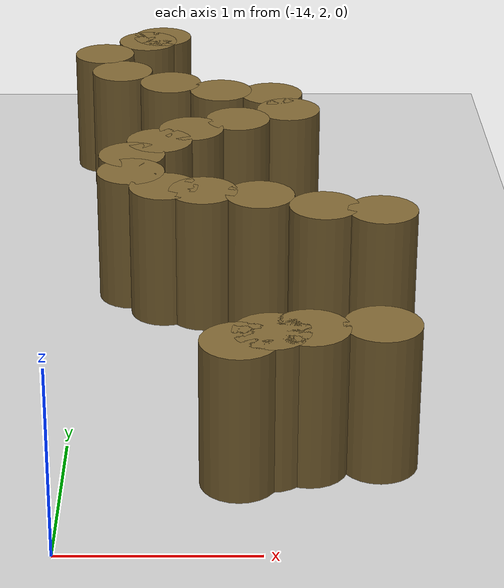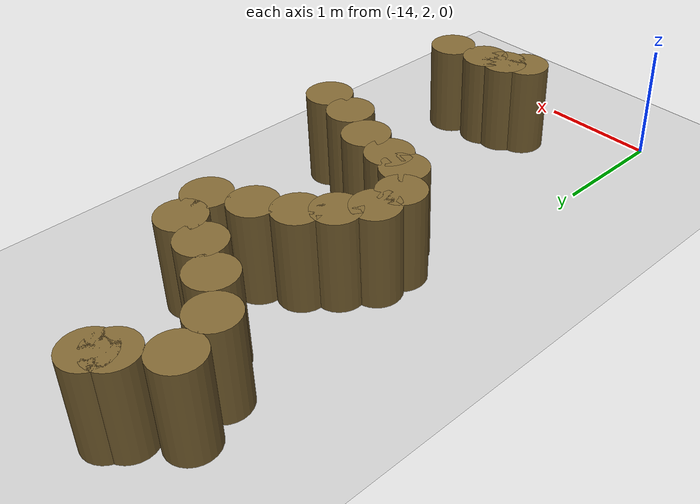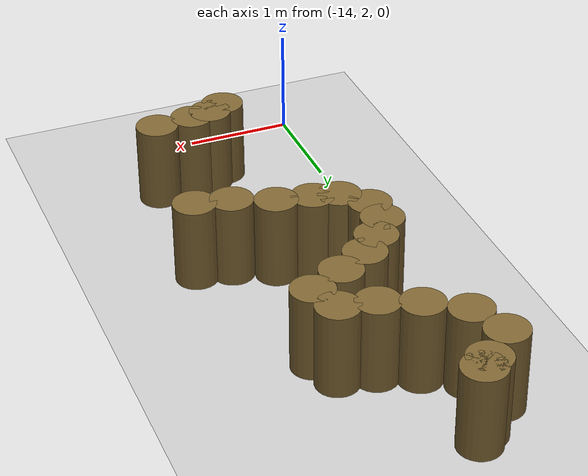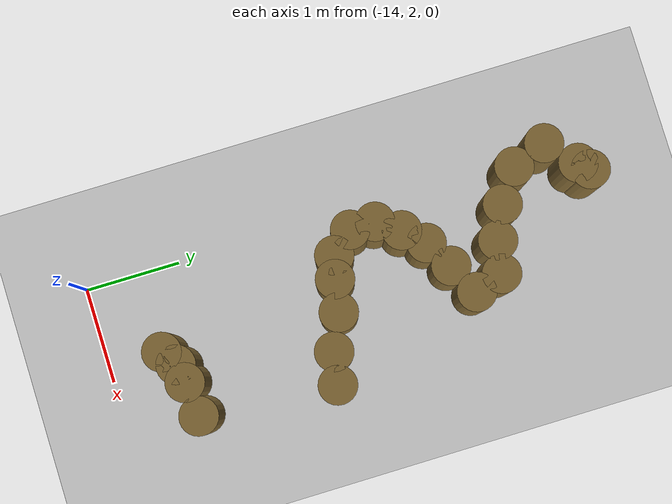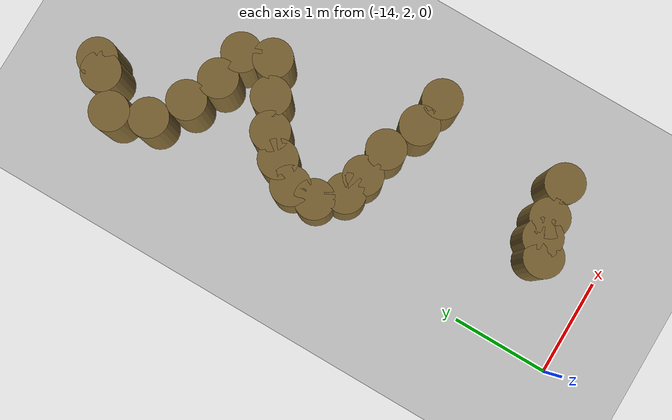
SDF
<sdf version="1.6">
 <world name="default">
  <model name="ground_plane">
   <static>1</static>
   <link name="link">
    <collision name="collision">
     <geometry><plane><normal>0 0 1</normal><size>100 100</size></plane></geometry>
     <surface><friction><ode><mu>100</mu><mu2>50</mu2></ode></friction></surface>
    </collision>
    <visual name="visual">
     <cast_shadows>0</cast_shadows>
     <geometry><plane><normal>0 0 1</normal><size>100 100</size></plane></geometry>
     <material>
      <script><uri>file://media/materials/scripts/gazebo.material</uri><name>Gazebo/Grey</name></script>
     </material>
    </visual>
   </link>
  </model>
  <model name="mini_cylinder_0_clone_0_clone_clone_clone_clone_3_clone_20_clone_21">
   <link name="link">
    <inertial>
     <mass>1</mass>
     <inertia><ixx>0.145833</ixx><ixy>0</ixy><ixz>0</ixz><iyy>0.145833</iyy><iyz>0</iyz><izz>0.125</izz></inertia>
    </inertial>
    <visual name="visual">
     <geometry><cylinder><radius>0.2</radius><length>0.8</length></cylinder></geometry>
     <material>
      <script><name>Gazebo/Grey</name><uri>file://media/materials/scripts/gazebo.material</uri></script>
      <shader type="vertex"><normal_map>__default__</normal_map></shader>
      <ambient>0.5 0.4 0.2 1</ambient>
      <diffuse>0.7 0.7 0.7 1</diffuse>
      <specular>0.01 0.01 0.01 1</specular>
      <emissive>0 0 0 1</emissive>
     </material>
    </visual>
    <collision name="collision">
     <geometry><cylinder><radius>0.2</radius><length>0.8</length></cylinder></geometry>
     <surface>
      <friction>
       <ode><mu>1</mu><mu2>1</mu2><fdir1>0 0 0</fdir1><slip1>0</slip1><slip2>0</slip2></ode>
       <torsional>
        <coefficient>1</coefficient>
        <patch_radius>0</patch_radius>
        <surface_radius>0</surface_radius>
        <use_patch_radius>1</use_patch_radius>
        <ode><slip>0</slip></ode>
       </torsional>
      </friction>
      <bounce><restitution_coefficient>0</restitution_coefficient><threshold>1e+06</threshold></bounce>
      <contact>
       <collide_without_contact>0</collide_without_contact>
       <collide_without_contact_bitmask>1</collide_without_contact_bitmask>
       <collide_bitmask>1</collide_bitmask>
       <ode>
        <soft_cfm>0</soft_cfm>
        <soft_erp>0.2</soft_erp>
        <kp>1e+13</kp>
        <kd>1</kd>
        <max_vel>0.01</max_vel>
        <min_depth>0</min_depth>
       </ode>
       <bullet>
        <split_impulse>1</split_impulse>
        <split_impulse_penetration_threshold>-0.01</split_impulse_penetration_threshold>
        <soft_cfm>0</soft_cfm>
        <soft_erp>0.2</soft_erp>
        <kp>1e+13</kp>
        <kd>1</kd>
       </bullet>
      </contact>
     </surface>
    </collision>
   </link>
   <static>1</static>
   <pose>-12.4008 2.82689 0.4 0 -0 0</pose>
  </model>
  <model name="mini_cylinder_0_clone_0_clone_clone_clone_clone_3_clone_20_clone_22">
   <link name="link">
    <inertial>
     <mass>1</mass>
     <inertia><ixx>0.145833</ixx><ixy>0</ixy><ixz>0</ixz><iyy>0.145833</iyy><iyz>0</iyz><izz>0.125</izz></inertia>
    </inertial>
    <visual name="visual">
     <geometry><cylinder><radius>0.2</radius><length>0.8</length></cylinder></geometry>
     <material>
      <script><name>Gazebo/Grey</name><uri>file://media/materials/scripts/gazebo.material</uri></script>
      <shader type="vertex"><normal_map>__default__</normal_map></shader>
      <ambient>0.5 0.4 0.2 1</ambient>
      <diffuse>0.7 0.7 0.7 1</diffuse>
      <specular>0.01 0.01 0.01 1</specular>
      <emissive>0 0 0 1</emissive>
     </material>
    </visual>
    <collision name="collision">
     <geometry><cylinder><radius>0.2</radius><length>0.8</length></cylinder></geometry>
     <surface>
      <friction>
       <ode><mu>1</mu><mu2>1</mu2><fdir1>0 0 0</fdir1><slip1>0</slip1><slip2>0</slip2></ode>
       <torsional>
        <coefficient>1</coefficient>
        <patch_radius>0</patch_radius>
        <surface_radius>0</surface_radius>
        <use_patch_radius>1</use_patch_radius>
        <ode><slip>0</slip></ode>
       </torsional>
      </friction>
      <bounce><restitution_coefficient>0</restitution_coefficient><threshold>1e+06</threshold></bounce>
      <contact>
       <collide_without_contact>0</collide_without_contact>
       <collide_without_contact_bitmask>1</collide_without_contact_bitmask>
       <collide_bitmask>1</collide_bitmask>
       <ode>
        <soft_cfm>0</soft_cfm>
        <soft_erp>0.2</soft_erp>
        <kp>1e+13</kp>
        <kd>1</kd>
        <max_vel>0.01</max_vel>
        <min_depth>0</min_depth>
       </ode>
       <bullet>
        <split_impulse>1</split_impulse>
        <split_impulse_penetration_threshold>-0.01</split_impulse_penetration_threshold>
        <soft_cfm>0</soft_cfm>
        <soft_erp>0.2</soft_erp>
        <kp>1e+13</kp>
        <kd>1</kd>
       </bullet>
      </contact>
     </surface>
    </collision>
   </link>
   <static>1</static>
   <pose>-12.7576 2.7888 0.4 0 -0 0</pose>
  </model>
  <model name="mini_cylinder_0_clone_0_clone_clone_clone_clone_3_clone_20_clone_23">
   <link name="link">
    <inertial>
     <mass>1</mass>
     <inertia><ixx>0.145833</ixx><ixy>0</ixy><ixz>0</ixz><iyy>0.145833</iyy><iyz>0</iyz><izz>0.125</izz></inertia>
    </inertial>
    <visual name="visual">
     <geometry><cylinder><radius>0.2</radius><length>0.8</length></cylinder></geometry>
     <material>
      <script><name>Gazebo/Grey</name><uri>file://media/materials/scripts/gazebo.material</uri></script>
      <shader type="vertex"><normal_map>__default__</normal_map></shader>
      <ambient>0.5 0.4 0.2 1</ambient>
      <diffuse>0.7 0.7 0.7 1</diffuse>
      <specular>0.01 0.01 0.01 1</specular>
      <emissive>0 0 0 1</emissive>
     </material>
    </visual>
    <collision name="collision">
     <geometry><cylinder><radius>0.2</radius><length>0.8</length></cylinder></geometry>
     <surface>
      <friction>
       <ode><mu>1</mu><mu2>1</mu2><fdir1>0 0 0</fdir1><slip1>0</slip1><slip2>0</slip2></ode>
       <torsional>
        <coefficient>1</coefficient>
        <patch_radius>0</patch_radius>
        <surface_radius>0</surface_radius>
        <use_patch_radius>1</use_patch_radius>
        <ode><slip>0</slip></ode>
       </torsional>
      </friction>
      <bounce><restitution_coefficient>0</restitution_coefficient><threshold>1e+06</threshold></bounce>
      <contact>
       <collide_without_contact>0</collide_without_contact>
       <collide_without_contact_bitmask>1</collide_without_contact_bitmask>
       <collide_bitmask>1</collide_bitmask>
       <ode>
        <soft_cfm>0</soft_cfm>
        <soft_erp>0.2</soft_erp>
        <kp>1e+13</kp>
        <kd>1</kd>
        <max_vel>0.01</max_vel>
        <min_depth>0</min_depth>
       </ode>
       <bullet>
        <split_impulse>1</split_impulse>
        <split_impulse_penetration_threshold>-0.01</split_impulse_penetration_threshold>
        <soft_cfm>0</soft_cfm>
        <soft_erp>0.2</soft_erp>
        <kp>1e+13</kp>
        <kd>1</kd>
       </bullet>
      </contact>
     </surface>
    </collision>
   </link>
   <static>1</static>
   <pose>-13.1132 2.65293 0.4 0 -0 0</pose>
  </model>
  <model name="mini_cylinder_0_clone_0_clone_clone_clone_clone_3_clone_20_clone_37">
   <link name="link">
    <inertial>
     <mass>1</mass>
     <inertia><ixx>0.145833</ixx><ixy>0</ixy><ixz>0</ixz><iyy>0.145833</iyy><iyz>0</iyz><izz>0.125</izz></inertia>
    </inertial>
    <visual name="visual">
     <geometry><cylinder><radius>0.2</radius><length>0.8</length></cylinder></geometry>
     <material>
      <script><name>Gazebo/Grey</name><uri>file://media/materials/scripts/gazebo.material</uri></script>
      <shader type="vertex"><normal_map>__default__</normal_map></shader>
      <ambient>0.5 0.4 0.2 1</ambient>
      <diffuse>0.7 0.7 0.7 1</diffuse>
      <specular>0.01 0.01 0.01 1</specular>
      <emissive>0 0 0 1</emissive>
     </material>
    </visual>
    <collision name="collision">
     <geometry><cylinder><radius>0.2</radius><length>0.8</length></cylinder></geometry>
     <surface>
      <friction>
       <ode><mu>1</mu><mu2>1</mu2><fdir1>0 0 0</fdir1><slip1>0</slip1><slip2>0</slip2></ode>
       <torsional>
        <coefficient>1</coefficient>
        <patch_radius>0</patch_radius>
        <surface_radius>0</surface_radius>
        <use_patch_radius>1</use_patch_radius>
        <ode><slip>0</slip></ode>
       </torsional>
      </friction>
      <bounce><restitution_coefficient>0</restitution_coefficient><threshold>1e+06</threshold></bounce>
      <contact>
       <collide_without_contact>0</collide_without_contact>
       <collide_without_contact_bitmask>1</collide_without_contact_bitmask>
       <collide_bitmask>1</collide_bitmask>
       <ode>
        <soft_cfm>0</soft_cfm>
        <soft_erp>0.2</soft_erp>
        <kp>1e+13</kp>
        <kd>1</kd>
        <max_vel>0.01</max_vel>
        <min_depth>0</min_depth>
       </ode>
       <bullet>
        <split_impulse>1</split_impulse>
        <split_impulse_penetration_threshold>-0.01</split_impulse_penetration_threshold>
        <soft_cfm>0</soft_cfm>
        <soft_erp>0.2</soft_erp>
        <kp>1e+13</kp>
        <kd>1</kd>
       </bullet>
      </contact>
     </surface>
    </collision>
   </link>
   <static>1</static>
   <pose>-12.9523 2.75298 0.4 0 -0 0</pose>
  </model>
  <model name="mini_cylinder_0_clone_0_clone_clone_clone_clone_3_clone_20_clone_42">
   <link name="link">
    <inertial>
     <mass>1</mass>
     <inertia><ixx>0.145833</ixx><ixy>0</ixy><ixz>0</ixz><iyy>0.145833</iyy><iyz>0</iyz><izz>0.125</izz></inertia>
    </inertial>
    <visual name="visual">
     <geometry><cylinder><radius>0.2</radius><length>0.8</length></cylinder></geometry>
     <material>
      <script><name>Gazebo/Grey</name><uri>file://media/materials/scripts/gazebo.material</uri></script>
      <shader type="vertex"><normal_map>__default__</normal_map></shader>
      <ambient>0.5 0.4 0.2 1</ambient>
      <diffuse>0.7 0.7 0.7 1</diffuse>
      <specular>0.01 0.01 0.01 1</specular>
      <emissive>0 0 0 1</emissive>
     </material>
    </visual>
    <collision name="collision">
     <geometry><cylinder><radius>0.2</radius><length>0.8</length></cylinder></geometry>
     <surface>
      <friction>
       <ode><mu>1</mu><mu2>1</mu2><fdir1>0 0 0</fdir1><slip1>0</slip1><slip2>0</slip2></ode>
       <torsional>
        <coefficient>1</coefficient>
        <patch_radius>0</patch_radius>
        <surface_radius>0</surface_radius>
        <use_patch_radius>1</use_patch_radius>
        <ode><slip>0</slip></ode>
       </torsional>
      </friction>
      <bounce><restitution_coefficient>0</restitution_coefficient><threshold>1e+06</threshold></bounce>
      <contact>
       <collide_without_contact>0</collide_without_contact>
       <collide_without_contact_bitmask>1</collide_without_contact_bitmask>
       <collide_bitmask>1</collide_bitmask>
       <ode>
        <soft_cfm>0</soft_cfm>
        <soft_erp>0.2</soft_erp>
        <kp>1e+13</kp>
        <kd>1</kd>
        <max_vel>0.01</max_vel>
        <min_depth>0</min_depth>
       </ode>
       <bullet>
        <split_impulse>1</split_impulse>
        <split_impulse_penetration_threshold>-0.01</split_impulse_penetration_threshold>
        <soft_cfm>0</soft_cfm>
        <soft_erp>0.2</soft_erp>
        <kp>1e+13</kp>
        <kd>1</kd>
       </bullet>
      </contact>
     </surface>
    </collision>
   </link>
   <static>1</static>
   <pose>-12.2932 4.2275 0.4 0 -0 0</pose>
  </model>
  <model name="mini_cylinder_0_clone_0_clone_clone_clone_clone_3_clone_20_clone_43">
   <link name="link">
    <inertial>
     <mass>1</mass>
     <inertia><ixx>0.145833</ixx><ixy>0</ixy><ixz>0</ixz><iyy>0.145833</iyy><iyz>0</iyz><izz>0.125</izz></inertia>
    </inertial>
    <visual name="visual">
     <geometry><cylinder><radius>0.2</radius><length>0.8</length></cylinder></geometry>
     <material>
      <script><name>Gazebo/Grey</name><uri>file://media/materials/scripts/gazebo.material</uri></script>
      <shader type="vertex"><normal_map>__default__</normal_map></shader>
      <ambient>0.5 0.4 0.2 1</ambient>
      <diffuse>0.7 0.7 0.7 1</diffuse>
      <specular>0.01 0.01 0.01 1</specular>
      <emissive>0 0 0 1</emissive>
     </material>
    </visual>
    <collision name="collision">
     <geometry><cylinder><radius>0.2</radius><length>0.8</length></cylinder></geometry>
     <surface>
      <friction>
       <ode><mu>1</mu><mu2>1</mu2><fdir1>0 0 0</fdir1><slip1>0</slip1><slip2>0</slip2></ode>
       <torsional>
        <coefficient>1</coefficient>
        <patch_radius>0</patch_radius>
        <surface_radius>0</surface_radius>
        <use_patch_radius>1</use_patch_radius>
        <ode><slip>0</slip></ode>
       </torsional>
      </friction>
      <bounce><restitution_coefficient>0</restitution_coefficient><threshold>1e+06</threshold></bounce>
      <contact>
       <collide_without_contact>0</collide_without_contact>
       <collide_without_contact_bitmask>1</collide_without_contact_bitmask>
       <collide_bitmask>1</collide_bitmask>
       <ode>
        <soft_cfm>0</soft_cfm>
        <soft_erp>0.2</soft_erp>
        <kp>1e+13</kp>
        <kd>1</kd>
        <max_vel>0.01</max_vel>
        <min_depth>0</min_depth>
       </ode>
       <bullet>
        <split_impulse>1</split_impulse>
        <split_impulse_penetration_threshold>-0.01</split_impulse_penetration_threshold>
        <soft_cfm>0</soft_cfm>
        <soft_erp>0.2</soft_erp>
        <kp>1e+13</kp>
        <kd>1</kd>
       </bullet>
      </contact>
     </surface>
    </collision>
   </link>
   <static>1</static>
   <pose>-12.6192 4.28741 0.4 0 -0 0</pose>
  </model>
  <model name="mini_cylinder_0_clone_0_clone_clone_clone_clone_3_clone_20_clone_44">
   <link name="link">
    <inertial>
     <mass>1</mass>
     <inertia><ixx>0.145833</ixx><ixy>0</ixy><ixz>0</ixz><iyy>0.145833</iyy><iyz>0</iyz><izz>0.125</izz></inertia>
    </inertial>
    <visual name="visual">
     <geometry><cylinder><radius>0.2</radius><length>0.8</length></cylinder></geometry>
     <material>
      <script><name>Gazebo/Grey</name><uri>file://media/materials/scripts/gazebo.material</uri></script>
      <shader type="vertex"><normal_map>__default__</normal_map></shader>
      <ambient>0.5 0.4 0.2 1</ambient>
      <diffuse>0.7 0.7 0.7 1</diffuse>
      <specular>0.01 0.01 0.01 1</specular>
      <emissive>0 0 0 1</emissive>
     </material>
    </visual>
    <collision name="collision">
     <geometry><cylinder><radius>0.2</radius><length>0.8</length></cylinder></geometry>
     <surface>
      <friction>
       <ode><mu>1</mu><mu2>1</mu2><fdir1>0 0 0</fdir1><slip1>0</slip1><slip2>0</slip2></ode>
       <torsional>
        <coefficient>1</coefficient>
        <patch_radius>0</patch_radius>
        <surface_radius>0</surface_radius>
        <use_patch_radius>1</use_patch_radius>
        <ode><slip>0</slip></ode>
       </torsional>
      </friction>
      <bounce><restitution_coefficient>0</restitution_coefficient><threshold>1e+06</threshold></bounce>
      <contact>
       <collide_without_contact>0</collide_without_contact>
       <collide_without_contact_bitmask>1</collide_without_contact_bitmask>
       <collide_bitmask>1</collide_bitmask>
       <ode>
        <soft_cfm>0</soft_cfm>
        <soft_erp>0.2</soft_erp>
        <kp>1e+13</kp>
        <kd>1</kd>
        <max_vel>0.01</max_vel>
        <min_depth>0</min_depth>
       </ode>
       <bullet>
        <split_impulse>1</split_impulse>
        <split_impulse_penetration_threshold>-0.01</split_impulse_penetration_threshold>
        <soft_cfm>0</soft_cfm>
        <soft_erp>0.2</soft_erp>
        <kp>1e+13</kp>
        <kd>1</kd>
       </bullet>
      </contact>
     </surface>
    </collision>
   </link>
   <static>1</static>
   <pose>-12.9796 4.44444 0.4 0 -0 0</pose>
  </model>
  <model name="mini_cylinder_0_clone_0_clone_clone_clone_clone_3_clone_20_clone_45">
   <link name="link">
    <inertial>
     <mass>1</mass>
     <inertia><ixx>0.145833</ixx><ixy>0</ixy><ixz>0</ixz><iyy>0.145833</iyy><iyz>0</iyz><izz>0.125</izz></inertia>
    </inertial>
    <visual name="visual">
     <geometry><cylinder><radius>0.2</radius><length>0.8</length></cylinder></geometry>
     <material>
      <script><name>Gazebo/Grey</name><uri>file://media/materials/scripts/gazebo.material</uri></script>
      <shader type="vertex"><normal_map>__default__</normal_map></shader>
      <ambient>0.5 0.4 0.2 1</ambient>
      <diffuse>0.7 0.7 0.7 1</diffuse>
      <specular>0.01 0.01 0.01 1</specular>
      <emissive>0 0 0 1</emissive>
     </material>
    </visual>
    <collision name="collision">
     <geometry><cylinder><radius>0.2</radius><length>0.8</length></cylinder></geometry>
     <surface>
      <friction>
       <ode><mu>1</mu><mu2>1</mu2><fdir1>0 0 0</fdir1><slip1>0</slip1><slip2>0</slip2></ode>
       <torsional>
        <coefficient>1</coefficient>
        <patch_radius>0</patch_radius>
        <surface_radius>0</surface_radius>
        <use_patch_radius>1</use_patch_radius>
        <ode><slip>0</slip></ode>
       </torsional>
      </friction>
      <bounce><restitution_coefficient>0</restitution_coefficient><threshold>1e+06</threshold></bounce>
      <contact>
       <collide_without_contact>0</collide_without_contact>
       <collide_without_contact_bitmask>1</collide_without_contact_bitmask>
       <collide_bitmask>1</collide_bitmask>
       <ode>
        <soft_cfm>0</soft_cfm>
        <soft_erp>0.2</soft_erp>
        <kp>1e+13</kp>
        <kd>1</kd>
        <max_vel>0.01</max_vel>
        <min_depth>0</min_depth>
       </ode>
       <bullet>
        <split_impulse>1</split_impulse>
        <split_impulse_penetration_threshold>-0.01</split_impulse_penetration_threshold>
        <soft_cfm>0</soft_cfm>
        <soft_erp>0.2</soft_erp>
        <kp>1e+13</kp>
        <kd>1</kd>
       </bullet>
      </contact>
     </surface>
    </collision>
   </link>
   <static>1</static>
   <pose>-13.3056 4.50446 0.4 0 -0 0</pose>
  </model>
  <model name="mini_cylinder_0_clone_0_clone_clone_clone_clone_3_clone_20_clone_46">
   <link name="link">
    <inertial>
     <mass>1</mass>
     <inertia><ixx>0.145833</ixx><ixy>0</ixy><ixz>0</ixz><iyy>0.145833</iyy><iyz>0</iyz><izz>0.125</izz></inertia>
    </inertial>
    <visual name="visual">
     <geometry><cylinder><radius>0.2</radius><length>0.8</length></cylinder></geometry>
     <material>
      <script><name>Gazebo/Grey</name><uri>file://media/materials/scripts/gazebo.material</uri></script>
      <shader type="vertex"><normal_map>__default__</normal_map></shader>
      <ambient>0.5 0.4 0.2 1</ambient>
      <diffuse>0.7 0.7 0.7 1</diffuse>
      <specular>0.01 0.01 0.01 1</specular>
      <emissive>0 0 0 1</emissive>
     </material>
    </visual>
    <collision name="collision">
     <geometry><cylinder><radius>0.2</radius><length>0.8</length></cylinder></geometry>
     <surface>
      <friction>
       <ode><mu>1</mu><mu2>1</mu2><fdir1>0 0 0</fdir1><slip1>0</slip1><slip2>0</slip2></ode>
       <torsional>
        <coefficient>1</coefficient>
        <patch_radius>0</patch_radius>
        <surface_radius>0</surface_radius>
        <use_patch_radius>1</use_patch_radius>
        <ode><slip>0</slip></ode>
       </torsional>
      </friction>
      <bounce><restitution_coefficient>0</restitution_coefficient><threshold>1e+06</threshold></bounce>
      <contact>
       <collide_without_contact>0</collide_without_contact>
       <collide_without_contact_bitmask>1</collide_without_contact_bitmask>
       <collide_bitmask>1</collide_bitmask>
       <ode>
        <soft_cfm>0</soft_cfm>
        <soft_erp>0.2</soft_erp>
        <kp>1e+13</kp>
        <kd>1</kd>
        <max_vel>0.01</max_vel>
        <min_depth>0</min_depth>
       </ode>
       <bullet>
        <split_impulse>1</split_impulse>
        <split_impulse_penetration_threshold>-0.01</split_impulse_penetration_threshold>
        <soft_cfm>0</soft_cfm>
        <soft_erp>0.2</soft_erp>
        <kp>1e+13</kp>
        <kd>1</kd>
       </bullet>
      </contact>
     </surface>
    </collision>
   </link>
   <static>1</static>
   <pose>-13.534 4.56588 0.4 0 -0 0</pose>
  </model>
  <model name="mini_cylinder_0_clone_0_clone_clone_clone_clone_3_clone_20_clone_47">
   <link name="link">
    <inertial>
     <mass>1</mass>
     <inertia><ixx>0.145833</ixx><ixy>0</ixy><ixz>0</ixz><iyy>0.145833</iyy><iyz>0</iyz><izz>0.125</izz></inertia>
    </inertial>
    <visual name="visual">
     <geometry><cylinder><radius>0.2</radius><length>0.8</length></cylinder></geometry>
     <material>
      <script><name>Gazebo/Grey</name><uri>file://media/materials/scripts/gazebo.material</uri></script>
      <shader type="vertex"><normal_map>__default__</normal_map></shader>
      <ambient>0.5 0.4 0.2 1</ambient>
      <diffuse>0.7 0.7 0.7 1</diffuse>
      <specular>0.01 0.01 0.01 1</specular>
      <emissive>0 0 0 1</emissive>
     </material>
    </visual>
    <collision name="collision">
     <geometry><cylinder><radius>0.2</radius><length>0.8</length></cylinder></geometry>
     <surface>
      <friction>
       <ode><mu>1</mu><mu2>1</mu2><fdir1>0 0 0</fdir1><slip1>0</slip1><slip2>0</slip2></ode>
       <torsional>
        <coefficient>1</coefficient>
        <patch_radius>0</patch_radius>
        <surface_radius>0</surface_radius>
        <use_patch_radius>1</use_patch_radius>
        <ode><slip>0</slip></ode>
       </torsional>
      </friction>
      <bounce><restitution_coefficient>0</restitution_coefficient><threshold>1e+06</threshold></bounce>
      <contact>
       <collide_without_contact>0</collide_without_contact>
       <collide_without_contact_bitmask>1</collide_without_contact_bitmask>
       <collide_bitmask>1</collide_bitmask>
       <ode>
        <soft_cfm>0</soft_cfm>
        <soft_erp>0.2</soft_erp>
        <kp>1e+13</kp>
        <kd>1</kd>
        <max_vel>0.01</max_vel>
        <min_depth>0</min_depth>
       </ode>
       <bullet>
        <split_impulse>1</split_impulse>
        <split_impulse_penetration_threshold>-0.01</split_impulse_penetration_threshold>
        <soft_cfm>0</soft_cfm>
        <soft_erp>0.2</soft_erp>
        <kp>1e+13</kp>
        <kd>1</kd>
       </bullet>
      </contact>
     </surface>
    </collision>
   </link>
   <static>1</static>
   <pose>-13.7328 4.79047 0.4 0 -0 0</pose>
  </model>
  <model name="mini_cylinder_0_clone_0_clone_clone_clone_clone_3_clone_20_clone_48">
   <link name="link">
    <inertial>
     <mass>1</mass>
     <inertia><ixx>0.145833</ixx><ixy>0</ixy><ixz>0</ixz><iyy>0.145833</iyy><iyz>0</iyz><izz>0.125</izz></inertia>
    </inertial>
    <visual name="visual">
     <geometry><cylinder><radius>0.2</radius><length>0.8</length></cylinder></geometry>
     <material>
      <script><name>Gazebo/Grey</name><uri>file://media/materials/scripts/gazebo.material</uri></script>
      <shader type="vertex"><normal_map>__default__</normal_map></shader>
      <ambient>0.5 0.4 0.2 1</ambient>
      <diffuse>0.7 0.7 0.7 1</diffuse>
      <specular>0.01 0.01 0.01 1</specular>
      <emissive>0 0 0 1</emissive>
     </material>
    </visual>
    <collision name="collision">
     <geometry><cylinder><radius>0.2</radius><length>0.8</length></cylinder></geometry>
     <surface>
      <friction>
       <ode><mu>1</mu><mu2>1</mu2><fdir1>0 0 0</fdir1><slip1>0</slip1><slip2>0</slip2></ode>
       <torsional>
        <coefficient>1</coefficient>
        <patch_radius>0</patch_radius>
        <surface_radius>0</surface_radius>
        <use_patch_radius>1</use_patch_radius>
        <ode><slip>0</slip></ode>
       </torsional>
      </friction>
      <bounce><restitution_coefficient>0</restitution_coefficient><threshold>1e+06</threshold></bounce>
      <contact>
       <collide_without_contact>0</collide_without_contact>
       <collide_without_contact_bitmask>1</collide_without_contact_bitmask>
       <collide_bitmask>1</collide_bitmask>
       <ode>
        <soft_cfm>0</soft_cfm>
        <soft_erp>0.2</soft_erp>
        <kp>1e+13</kp>
        <kd>1</kd>
        <max_vel>0.01</max_vel>
        <min_depth>0</min_depth>
       </ode>
       <bullet>
        <split_impulse>1</split_impulse>
        <split_impulse_penetration_threshold>-0.01</split_impulse_penetration_threshold>
        <soft_cfm>0</soft_cfm>
        <soft_erp>0.2</soft_erp>
        <kp>1e+13</kp>
        <kd>1</kd>
       </bullet>
      </contact>
     </surface>
    </collision>
   </link>
   <static>1</static>
   <pose>-13.7376 5.05056 0.4 0 -0 0</pose>
  </model>
  <model name="mini_cylinder_0_clone_0_clone_clone_clone_clone_3_clone_20_clone_49">
   <link name="link">
    <inertial>
     <mass>1</mass>
     <inertia><ixx>0.145833</ixx><ixy>0</ixy><ixz>0</ixz><iyy>0.145833</iyy><iyz>0</iyz><izz>0.125</izz></inertia>
    </inertial>
    <visual name="visual">
     <geometry><cylinder><radius>0.2</radius><length>0.8</length></cylinder></geometry>
     <material>
      <script><name>Gazebo/Grey</name><uri>file://media/materials/scripts/gazebo.material</uri></script>
      <shader type="vertex"><normal_map>__default__</normal_map></shader>
      <ambient>0.5 0.4 0.2 1</ambient>
      <diffuse>0.7 0.7 0.7 1</diffuse>
      <specular>0.01 0.01 0.01 1</specular>
      <emissive>0 0 0 1</emissive>
     </material>
    </visual>
    <collision name="collision">
     <geometry><cylinder><radius>0.2</radius><length>0.8</length></cylinder></geometry>
     <surface>
      <friction>
       <ode><mu>1</mu><mu2>1</mu2><fdir1>0 0 0</fdir1><slip1>0</slip1><slip2>0</slip2></ode>
       <torsional>
        <coefficient>1</coefficient>
        <patch_radius>0</patch_radius>
        <surface_radius>0</surface_radius>
        <use_patch_radius>1</use_patch_radius>
        <ode><slip>0</slip></ode>
       </torsional>
      </friction>
      <bounce><restitution_coefficient>0</restitution_coefficient><threshold>1e+06</threshold></bounce>
      <contact>
       <collide_without_contact>0</collide_without_contact>
       <collide_without_contact_bitmask>1</collide_without_contact_bitmask>
       <collide_bitmask>1</collide_bitmask>
       <ode>
        <soft_cfm>0</soft_cfm>
        <soft_erp>0.2</soft_erp>
        <kp>1e+13</kp>
        <kd>1</kd>
        <max_vel>0.01</max_vel>
        <min_depth>0</min_depth>
       </ode>
       <bullet>
        <split_impulse>1</split_impulse>
        <split_impulse_penetration_threshold>-0.01</split_impulse_penetration_threshold>
        <soft_cfm>0</soft_cfm>
        <soft_erp>0.2</soft_erp>
        <kp>1e+13</kp>
        <kd>1</kd>
       </bullet>
      </contact>
     </surface>
    </collision>
   </link>
   <static>1</static>
   <pose>-13.5781 5.28069 0.4 0 -0 0</pose>
  </model>
  <model name="mini_cylinder_0_clone_0_clone_clone_clone_clone_3_clone_20_clone_50">
   <link name="link">
    <inertial>
     <mass>1</mass>
     <inertia><ixx>0.145833</ixx><ixy>0</ixy><ixz>0</ixz><iyy>0.145833</iyy><iyz>0</iyz><izz>0.125</izz></inertia>
    </inertial>
    <visual name="visual">
     <geometry><cylinder><radius>0.2</radius><length>0.8</length></cylinder></geometry>
     <material>
      <script><name>Gazebo/Grey</name><uri>file://media/materials/scripts/gazebo.material</uri></script>
      <shader type="vertex"><normal_map>__default__</normal_map></shader>
      <ambient>0.5 0.4 0.2 1</ambient>
      <diffuse>0.7 0.7 0.7 1</diffuse>
      <specular>0.01 0.01 0.01 1</specular>
      <emissive>0 0 0 1</emissive>
     </material>
    </visual>
    <collision name="collision">
     <geometry><cylinder><radius>0.2</radius><length>0.8</length></cylinder></geometry>
     <surface>
      <friction>
       <ode><mu>1</mu><mu2>1</mu2><fdir1>0 0 0</fdir1><slip1>0</slip1><slip2>0</slip2></ode>
       <torsional>
        <coefficient>1</coefficient>
        <patch_radius>0</patch_radius>
        <surface_radius>0</surface_radius>
        <use_patch_radius>1</use_patch_radius>
        <ode><slip>0</slip></ode>
       </torsional>
      </friction>
      <bounce><restitution_coefficient>0</restitution_coefficient><threshold>1e+06</threshold></bounce>
      <contact>
       <collide_without_contact>0</collide_without_contact>
       <collide_without_contact_bitmask>1</collide_without_contact_bitmask>
       <collide_bitmask>1</collide_bitmask>
       <ode>
        <soft_cfm>0</soft_cfm>
        <soft_erp>0.2</soft_erp>
        <kp>1e+13</kp>
        <kd>1</kd>
        <max_vel>0.01</max_vel>
        <min_depth>0</min_depth>
       </ode>
       <bullet>
        <split_impulse>1</split_impulse>
        <split_impulse_penetration_threshold>-0.01</split_impulse_penetration_threshold>
        <soft_cfm>0</soft_cfm>
        <soft_erp>0.2</soft_erp>
        <kp>1e+13</kp>
        <kd>1</kd>
       </bullet>
      </contact>
     </surface>
    </collision>
   </link>
   <static>1</static>
   <pose>-13.3864 5.47905 0.4 0 -0 0</pose>
  </model>
  <model name="mini_cylinder_0_clone_0_clone_clone_clone_clone_3_clone_20_clone_51">
   <link name="link">
    <inertial>
     <mass>1</mass>
     <inertia><ixx>0.145833</ixx><ixy>0</ixy><ixz>0</ixz><iyy>0.145833</iyy><iyz>0</iyz><izz>0.125</izz></inertia>
    </inertial>
    <visual name="visual">
     <geometry><cylinder><radius>0.2</radius><length>0.8</length></cylinder></geometry>
     <material>
      <script><name>Gazebo/Grey</name><uri>file://media/materials/scripts/gazebo.material</uri></script>
      <shader type="vertex"><normal_map>__default__</normal_map></shader>
      <ambient>0.5 0.4 0.2 1</ambient>
      <diffuse>0.7 0.7 0.7 1</diffuse>
      <specular>0.01 0.01 0.01 1</specular>
      <emissive>0 0 0 1</emissive>
     </material>
    </visual>
    <collision name="collision">
     <geometry><cylinder><radius>0.2</radius><length>0.8</length></cylinder></geometry>
     <surface>
      <friction>
       <ode><mu>1</mu><mu2>1</mu2><fdir1>0 0 0</fdir1><slip1>0</slip1><slip2>0</slip2></ode>
       <torsional>
        <coefficient>1</coefficient>
        <patch_radius>0</patch_radius>
        <surface_radius>0</surface_radius>
        <use_patch_radius>1</use_patch_radius>
        <ode><slip>0</slip></ode>
       </torsional>
      </friction>
      <bounce><restitution_coefficient>0</restitution_coefficient><threshold>1e+06</threshold></bounce>
      <contact>
       <collide_without_contact>0</collide_without_contact>
       <collide_without_contact_bitmask>1</collide_without_contact_bitmask>
       <collide_bitmask>1</collide_bitmask>
       <ode>
        <soft_cfm>0</soft_cfm>
        <soft_erp>0.2</soft_erp>
        <kp>1e+13</kp>
        <kd>1</kd>
        <max_vel>0.01</max_vel>
        <min_depth>0</min_depth>
       </ode>
       <bullet>
        <split_impulse>1</split_impulse>
        <split_impulse_penetration_threshold>-0.01</split_impulse_penetration_threshold>
        <soft_cfm>0</soft_cfm>
        <soft_erp>0.2</soft_erp>
        <kp>1e+13</kp>
        <kd>1</kd>
       </bullet>
      </contact>
     </surface>
    </collision>
   </link>
   <static>1</static>
   <pose>-13.0966 5.64671 0.4 0 -0 0</pose>
  </model>
  <model name="mini_cylinder_0_clone_0_clone_clone_clone_clone_3_clone_20_clone_52">
   <link name="link">
    <inertial>
     <mass>1</mass>
     <inertia><ixx>0.145833</ixx><ixy>0</ixy><ixz>0</ixz><iyy>0.145833</iyy><iyz>0</iyz><izz>0.125</izz></inertia>
    </inertial>
    <visual name="visual">
     <geometry><cylinder><radius>0.2</radius><length>0.8</length></cylinder></geometry>
     <material>
      <script><name>Gazebo/Grey</name><uri>file://media/materials/scripts/gazebo.material</uri></script>
      <shader type="vertex"><normal_map>__default__</normal_map></shader>
      <ambient>0.5 0.4 0.2 1</ambient>
      <diffuse>0.7 0.7 0.7 1</diffuse>
      <specular>0.01 0.01 0.01 1</specular>
      <emissive>0 0 0 1</emissive>
     </material>
    </visual>
    <collision name="collision">
     <geometry><cylinder><radius>0.2</radius><length>0.8</length></cylinder></geometry>
     <surface>
      <friction>
       <ode><mu>1</mu><mu2>1</mu2><fdir1>0 0 0</fdir1><slip1>0</slip1><slip2>0</slip2></ode>
       <torsional>
        <coefficient>1</coefficient>
        <patch_radius>0</patch_radius>
        <surface_radius>0</surface_radius>
        <use_patch_radius>1</use_patch_radius>
        <ode><slip>0</slip></ode>
       </torsional>
      </friction>
      <bounce><restitution_coefficient>0</restitution_coefficient><threshold>1e+06</threshold></bounce>
      <contact>
       <collide_without_contact>0</collide_without_contact>
       <collide_without_contact_bitmask>1</collide_without_contact_bitmask>
       <collide_bitmask>1</collide_bitmask>
       <ode>
        <soft_cfm>0</soft_cfm>
        <soft_erp>0.2</soft_erp>
        <kp>1e+13</kp>
        <kd>1</kd>
        <max_vel>0.01</max_vel>
        <min_depth>0</min_depth>
       </ode>
       <bullet>
        <split_impulse>1</split_impulse>
        <split_impulse_penetration_threshold>-0.01</split_impulse_penetration_threshold>
        <soft_cfm>0</soft_cfm>
        <soft_erp>0.2</soft_erp>
        <kp>1e+13</kp>
        <kd>1</kd>
       </bullet>
      </contact>
     </surface>
    </collision>
   </link>
   <static>1</static>
   <pose>-12.7744 5.81436 0.4 0 -0 0</pose>
  </model>
  <model name="mini_cylinder_0_clone_0_clone_clone_clone_clone_3_clone_20_clone_53">
   <link name="link">
    <inertial>
     <mass>1</mass>
     <inertia><ixx>0.145833</ixx><ixy>0</ixy><ixz>0</ixz><iyy>0.145833</iyy><iyz>0</iyz><izz>0.125</izz></inertia>
    </inertial>
    <visual name="visual">
     <geometry><cylinder><radius>0.2</radius><length>0.8</length></cylinder></geometry>
     <material>
      <script><name>Gazebo/Grey</name><uri>file://media/materials/scripts/gazebo.material</uri></script>
      <shader type="vertex"><normal_map>__default__</normal_map></shader>
      <ambient>0.5 0.4 0.2 1</ambient>
      <diffuse>0.7 0.7 0.7 1</diffuse>
      <specular>0.01 0.01 0.01 1</specular>
      <emissive>0 0 0 1</emissive>
     </material>
    </visual>
    <collision name="collision">
     <geometry><cylinder><radius>0.2</radius><length>0.8</length></cylinder></geometry>
     <surface>
      <friction>
       <ode><mu>1</mu><mu2>1</mu2><fdir1>0 0 0</fdir1><slip1>0</slip1><slip2>0</slip2></ode>
       <torsional>
        <coefficient>1</coefficient>
        <patch_radius>0</patch_radius>
        <surface_radius>0</surface_radius>
        <use_patch_radius>1</use_patch_radius>
        <ode><slip>0</slip></ode>
       </torsional>
      </friction>
      <bounce><restitution_coefficient>0</restitution_coefficient><threshold>1e+06</threshold></bounce>
      <contact>
       <collide_without_contact>0</collide_without_contact>
       <collide_without_contact_bitmask>1</collide_without_contact_bitmask>
       <collide_bitmask>1</collide_bitmask>
       <ode>
        <soft_cfm>0</soft_cfm>
        <soft_erp>0.2</soft_erp>
        <kp>1e+13</kp>
        <kd>1</kd>
        <max_vel>0.01</max_vel>
        <min_depth>0</min_depth>
       </ode>
       <bullet>
        <split_impulse>1</split_impulse>
        <split_impulse_penetration_threshold>-0.01</split_impulse_penetration_threshold>
        <soft_cfm>0</soft_cfm>
        <soft_erp>0.2</soft_erp>
        <kp>1e+13</kp>
        <kd>1</kd>
       </bullet>
      </contact>
     </surface>
    </collision>
   </link>
   <static>1</static>
   <pose>-12.8762 6.10548 0.4 0 -0 0</pose>
  </model>
  <model name="mini_cylinder_0_clone_0_clone_clone_clone_clone_3_clone_20_clone_54">
   <link name="link">
    <inertial>
     <mass>1</mass>
     <inertia><ixx>0.145833</ixx><ixy>0</ixy><ixz>0</ixz><iyy>0.145833</iyy><iyz>0</iyz><izz>0.125</izz></inertia>
    </inertial>
    <visual name="visual">
     <geometry><cylinder><radius>0.2</radius><length>0.8</length></cylinder></geometry>
     <material>
      <script><name>Gazebo/Grey</name><uri>file://media/materials/scripts/gazebo.material</uri></script>
      <shader type="vertex"><normal_map>__default__</normal_map></shader>
      <ambient>0.5 0.4 0.2 1</ambient>
      <diffuse>0.7 0.7 0.7 1</diffuse>
      <specular>0.01 0.01 0.01 1</specular>
      <emissive>0 0 0 1</emissive>
     </material>
    </visual>
    <collision name="collision">
     <geometry><cylinder><radius>0.2</radius><length>0.8</length></cylinder></geometry>
     <surface>
      <friction>
       <ode><mu>1</mu><mu2>1</mu2><fdir1>0 0 0</fdir1><slip1>0</slip1><slip2>0</slip2></ode>
       <torsional>
        <coefficient>1</coefficient>
        <patch_radius>0</patch_radius>
        <surface_radius>0</surface_radius>
        <use_patch_radius>1</use_patch_radius>
        <ode><slip>0</slip></ode>
       </torsional>
      </friction>
      <bounce><restitution_coefficient>0</restitution_coefficient><threshold>1e+06</threshold></bounce>
      <contact>
       <collide_without_contact>0</collide_without_contact>
       <collide_without_contact_bitmask>1</collide_without_contact_bitmask>
       <collide_bitmask>1</collide_bitmask>
       <ode>
        <soft_cfm>0</soft_cfm>
        <soft_erp>0.2</soft_erp>
        <kp>1e+13</kp>
        <kd>1</kd>
        <max_vel>0.01</max_vel>
        <min_depth>0</min_depth>
       </ode>
       <bullet>
        <split_impulse>1</split_impulse>
        <split_impulse_penetration_threshold>-0.01</split_impulse_penetration_threshold>
        <soft_cfm>0</soft_cfm>
        <soft_erp>0.2</soft_erp>
        <kp>1e+13</kp>
        <kd>1</kd>
       </bullet>
      </contact>
     </surface>
    </collision>
   </link>
   <static>1</static>
   <pose>-13.2033 6.16621 0.4 0 -0 0</pose>
  </model>
  <model name="mini_cylinder_0_clone_0_clone_clone_clone_clone_3_clone_20_clone_55">
   <link name="link">
    <inertial>
     <mass>1</mass>
     <inertia><ixx>0.145833</ixx><ixy>0</ixy><ixz>0</ixz><iyy>0.145833</iyy><iyz>0</iyz><izz>0.125</izz></inertia>
    </inertial>
    <visual name="visual">
     <geometry><cylinder><radius>0.2</radius><length>0.8</length></cylinder></geometry>
     <material>
      <script><name>Gazebo/Grey</name><uri>file://media/materials/scripts/gazebo.material</uri></script>
      <shader type="vertex"><normal_map>__default__</normal_map></shader>
      <ambient>0.5 0.4 0.2 1</ambient>
      <diffuse>0.7 0.7 0.7 1</diffuse>
      <specular>0.01 0.01 0.01 1</specular>
      <emissive>0 0 0 1</emissive>
     </material>
    </visual>
    <collision name="collision">
     <geometry><cylinder><radius>0.2</radius><length>0.8</length></cylinder></geometry>
     <surface>
      <friction>
       <ode><mu>1</mu><mu2>1</mu2><fdir1>0 0 0</fdir1><slip1>0</slip1><slip2>0</slip2></ode>
       <torsional>
        <coefficient>1</coefficient>
        <patch_radius>0</patch_radius>
        <surface_radius>0</surface_radius>
        <use_patch_radius>1</use_patch_radius>
        <ode><slip>0</slip></ode>
       </torsional>
      </friction>
      <bounce><restitution_coefficient>0</restitution_coefficient><threshold>1e+06</threshold></bounce>
      <contact>
       <collide_without_contact>0</collide_without_contact>
       <collide_without_contact_bitmask>1</collide_without_contact_bitmask>
       <collide_bitmask>1</collide_bitmask>
       <ode>
        <soft_cfm>0</soft_cfm>
        <soft_erp>0.2</soft_erp>
        <kp>1e+13</kp>
        <kd>1</kd>
        <max_vel>0.01</max_vel>
        <min_depth>0</min_depth>
       </ode>
       <bullet>
        <split_impulse>1</split_impulse>
        <split_impulse_penetration_threshold>-0.01</split_impulse_penetration_threshold>
        <soft_cfm>0</soft_cfm>
        <soft_erp>0.2</soft_erp>
        <kp>1e+13</kp>
        <kd>1</kd>
       </bullet>
      </contact>
     </surface>
    </collision>
   </link>
   <static>1</static>
   <pose>-13.5352 6.31781 0.4 0 -0 0</pose>
  </model>
  <model name="mini_cylinder_0_clone_0_clone_clone_clone_clone_3_clone_20_clone_56">
   <link name="link">
    <inertial>
     <mass>1</mass>
     <inertia><ixx>0.145833</ixx><ixy>0</ixy><ixz>0</ixz><iyy>0.145833</iyy><iyz>0</iyz><izz>0.125</izz></inertia>
    </inertial>
    <visual name="visual">
     <geometry><cylinder><radius>0.2</radius><length>0.8</length></cylinder></geometry>
     <material>
      <script><name>Gazebo/Grey</name><uri>file://media/materials/scripts/gazebo.material</uri></script>
      <shader type="vertex"><normal_map>__default__</normal_map></shader>
      <ambient>0.5 0.4 0.2 1</ambient>
      <diffuse>0.7 0.7 0.7 1</diffuse>
      <specular>0.01 0.01 0.01 1</specular>
      <emissive>0 0 0 1</emissive>
     </material>
    </visual>
    <collision name="collision">
     <geometry><cylinder><radius>0.2</radius><length>0.8</length></cylinder></geometry>
     <surface>
      <friction>
       <ode><mu>1</mu><mu2>1</mu2><fdir1>0 0 0</fdir1><slip1>0</slip1><slip2>0</slip2></ode>
       <torsional>
        <coefficient>1</coefficient>
        <patch_radius>0</patch_radius>
        <surface_radius>0</surface_radius>
        <use_patch_radius>1</use_patch_radius>
        <ode><slip>0</slip></ode>
       </torsional>
      </friction>
      <bounce><restitution_coefficient>0</restitution_coefficient><threshold>1e+06</threshold></bounce>
      <contact>
       <collide_without_contact>0</collide_without_contact>
       <collide_without_contact_bitmask>1</collide_without_contact_bitmask>
       <collide_bitmask>1</collide_bitmask>
       <ode>
        <soft_cfm>0</soft_cfm>
        <soft_erp>0.2</soft_erp>
        <kp>1e+13</kp>
        <kd>1</kd>
        <max_vel>0.01</max_vel>
        <min_depth>0</min_depth>
       </ode>
       <bullet>
        <split_impulse>1</split_impulse>
        <split_impulse_penetration_threshold>-0.01</split_impulse_penetration_threshold>
        <soft_cfm>0</soft_cfm>
        <soft_erp>0.2</soft_erp>
        <kp>1e+13</kp>
        <kd>1</kd>
       </bullet>
      </contact>
     </surface>
    </collision>
   </link>
   <static>1</static>
   <pose>-13.8634 6.54035 0.4 0 -0 0</pose>
  </model>
  <model name="mini_cylinder_0_clone_0_clone_clone_clone_clone_3_clone_20_clone_57">
   <link name="link">
    <inertial>
     <mass>1</mass>
     <inertia><ixx>0.145833</ixx><ixy>0</ixy><ixz>0</ixz><iyy>0.145833</iyy><iyz>0</iyz><izz>0.125</izz></inertia>
    </inertial>
    <visual name="visual">
     <geometry><cylinder><radius>0.2</radius><length>0.8</length></cylinder></geometry>
     <material>
      <script><name>Gazebo/Grey</name><uri>file://media/materials/scripts/gazebo.material</uri></script>
      <shader type="vertex"><normal_map>__default__</normal_map></shader>
      <ambient>0.5 0.4 0.2 1</ambient>
      <diffuse>0.7 0.7 0.7 1</diffuse>
      <specular>0.01 0.01 0.01 1</specular>
      <emissive>0 0 0 1</emissive>
     </material>
    </visual>
    <collision name="collision">
     <geometry><cylinder><radius>0.2</radius><length>0.8</length></cylinder></geometry>
     <surface>
      <friction>
       <ode><mu>1</mu><mu2>1</mu2><fdir1>0 0 0</fdir1><slip1>0</slip1><slip2>0</slip2></ode>
       <torsional>
        <coefficient>1</coefficient>
        <patch_radius>0</patch_radius>
        <surface_radius>0</surface_radius>
        <use_patch_radius>1</use_patch_radius>
        <ode><slip>0</slip></ode>
       </torsional>
      </friction>
      <bounce><restitution_coefficient>0</restitution_coefficient><threshold>1e+06</threshold></bounce>
      <contact>
       <collide_without_contact>0</collide_without_contact>
       <collide_without_contact_bitmask>1</collide_without_contact_bitmask>
       <collide_bitmask>1</collide_bitmask>
       <ode>
        <soft_cfm>0</soft_cfm>
        <soft_erp>0.2</soft_erp>
        <kp>1e+13</kp>
        <kd>1</kd>
        <max_vel>0.01</max_vel>
        <min_depth>0</min_depth>
       </ode>
       <bullet>
        <split_impulse>1</split_impulse>
        <split_impulse_penetration_threshold>-0.01</split_impulse_penetration_threshold>
        <soft_cfm>0</soft_cfm>
        <soft_erp>0.2</soft_erp>
        <kp>1e+13</kp>
        <kd>1</kd>
       </bullet>
      </contact>
     </surface>
    </collision>
   </link>
   <static>1</static>
   <pose>-14.0001 6.89604 0.4 0 -0 0</pose>
  </model>
  <model name="mini_cylinder_0_clone_0_clone_clone_clone_clone_3_clone_20_clone_58">
   <link name="link">
    <inertial>
     <mass>1</mass>
     <inertia><ixx>0.145833</ixx><ixy>0</ixy><ixz>0</ixz><iyy>0.145833</iyy><iyz>0</iyz><izz>0.125</izz></inertia>
    </inertial>
    <visual name="visual">
     <geometry><cylinder><radius>0.2</radius><length>0.8</length></cylinder></geometry>
     <material>
      <script><name>Gazebo/Grey</name><uri>file://media/materials/scripts/gazebo.material</uri></script>
      <shader type="vertex"><normal_map>__default__</normal_map></shader>
      <ambient>0.5 0.4 0.2 1</ambient>
      <diffuse>0.7 0.7 0.7 1</diffuse>
      <specular>0.01 0.01 0.01 1</specular>
      <emissive>0 0 0 1</emissive>
     </material>
    </visual>
    <collision name="collision">
     <geometry><cylinder><radius>0.2</radius><length>0.8</length></cylinder></geometry>
     <surface>
      <friction>
       <ode><mu>1</mu><mu2>1</mu2><fdir1>0 0 0</fdir1><slip1>0</slip1><slip2>0</slip2></ode>
       <torsional>
        <coefficient>1</coefficient>
        <patch_radius>0</patch_radius>
        <surface_radius>0</surface_radius>
        <use_patch_radius>1</use_patch_radius>
        <ode><slip>0</slip></ode>
       </torsional>
      </friction>
      <bounce><restitution_coefficient>0</restitution_coefficient><threshold>1e+06</threshold></bounce>
      <contact>
       <collide_without_contact>0</collide_without_contact>
       <collide_without_contact_bitmask>1</collide_without_contact_bitmask>
       <collide_bitmask>1</collide_bitmask>
       <ode>
        <soft_cfm>0</soft_cfm>
        <soft_erp>0.2</soft_erp>
        <kp>1e+13</kp>
        <kd>1</kd>
        <max_vel>0.01</max_vel>
        <min_depth>0</min_depth>
       </ode>
       <bullet>
        <split_impulse>1</split_impulse>
        <split_impulse_penetration_threshold>-0.01</split_impulse_penetration_threshold>
        <soft_cfm>0</soft_cfm>
        <soft_erp>0.2</soft_erp>
        <kp>1e+13</kp>
        <kd>1</kd>
       </bullet>
      </contact>
     </surface>
    </collision>
   </link>
   <static>1</static>
   <pose>-13.7124 7.16198 0.4 0 -0 0</pose>
  </model>
  <model name="mini_cylinder_0_clone_0_clone_clone_clone_clone_3_clone_20_clone_62">
   <link name="link">
    <inertial>
     <mass>1</mass>
     <inertia><ixx>0.145833</ixx><ixy>0</ixy><ixz>0</ixz><iyy>0.145833</iyy><iyz>0</iyz><izz>0.125</izz></inertia>
    </inertial>
    <visual name="visual">
     <geometry><cylinder><radius>0.2</radius><length>0.8</length></cylinder></geometry>
     <material>
      <script><name>Gazebo/Grey</name><uri>file://media/materials/scripts/gazebo.material</uri></script>
      <shader type="vertex"><normal_map>__default__</normal_map></shader>
      <ambient>0.5 0.4 0.2 1</ambient>
      <diffuse>0.7 0.7 0.7 1</diffuse>
      <specular>0.01 0.01 0.01 1</specular>
      <emissive>0 0 0 1</emissive>
     </material>
    </visual>
    <collision name="collision">
     <geometry><cylinder><radius>0.2</radius><length>0.8</length></cylinder></geometry>
     <surface>
      <friction>
       <ode><mu>1</mu><mu2>1</mu2><fdir1>0 0 0</fdir1><slip1>0</slip1><slip2>0</slip2></ode>
       <torsional>
        <coefficient>1</coefficient>
        <patch_radius>0</patch_radius>
        <surface_radius>0</surface_radius>
        <use_patch_radius>1</use_patch_radius>
        <ode><slip>0</slip></ode>
       </torsional>
      </friction>
      <bounce><restitution_coefficient>0</restitution_coefficient><threshold>1e+06</threshold></bounce>
      <contact>
       <collide_without_contact>0</collide_without_contact>
       <collide_without_contact_bitmask>1</collide_without_contact_bitmask>
       <collide_bitmask>1</collide_bitmask>
       <ode>
        <soft_cfm>0</soft_cfm>
        <soft_erp>0.2</soft_erp>
        <kp>1e+13</kp>
        <kd>1</kd>
        <max_vel>0.01</max_vel>
        <min_depth>0</min_depth>
       </ode>
       <bullet>
        <split_impulse>1</split_impulse>
        <split_impulse_penetration_threshold>-0.01</split_impulse_penetration_threshold>
        <soft_cfm>0</soft_cfm>
        <soft_erp>0.2</soft_erp>
        <kp>1e+13</kp>
        <kd>1</kd>
       </bullet>
      </contact>
     </surface>
    </collision>
   </link>
   <static>1</static>
   <pose>-13.6156 7.26108 0.4 0 -0 0</pose>
  </model>
 </world>
</sdf>
